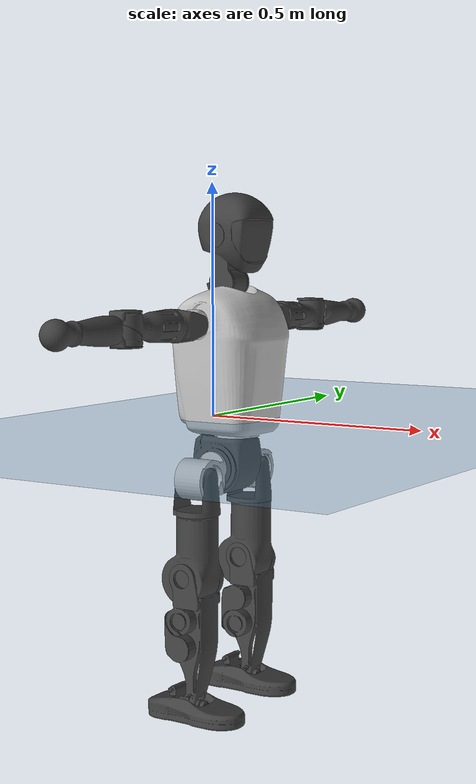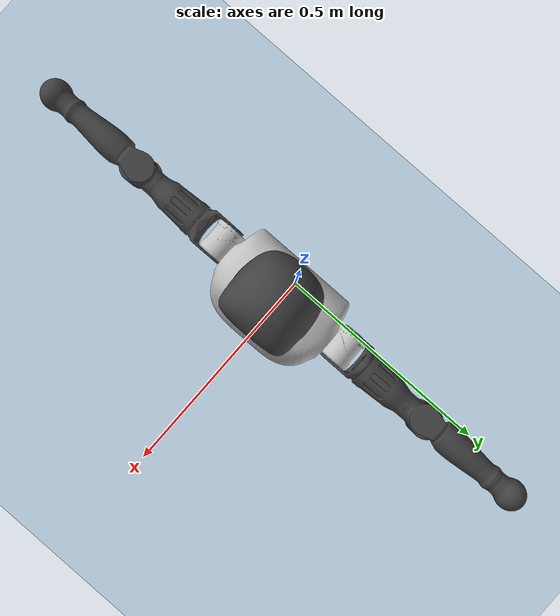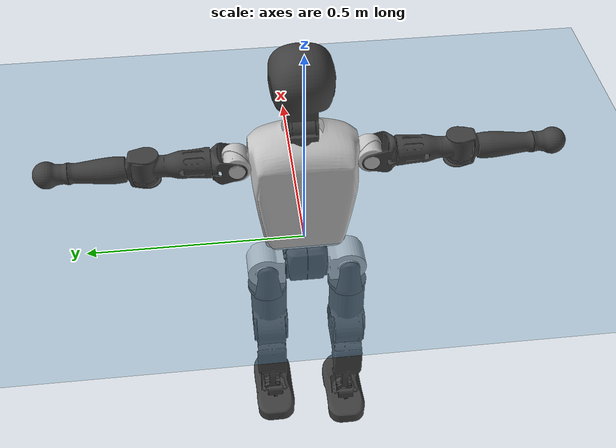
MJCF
<mujoco model="T1">
  <compiler angle="radian" assetdir="assets" balanceinertia="true" inertiafromgeom="false"/>

  <option timestep="0.005" density="1.2" viscosity="2e-05"/>

  <size nkey="1"/>

  <visual>
    <quality shadowsize="8192"/>
    <map shadowclip="0.5"/>
  </visual>

  <default>
    <default class="/">
      <joint armature="0.01" damping="0.01" frictionloss="0.1"/>
      <geom contype="0" conaffinity="0" group="1" solref="-1000 -80"/>
      <site size="0.01 0.005 0.005" group="5"/>
      <general forcelimited="true" biastype="affine" gainprm="25" biasprm="0 -25 -0.6"/>
      <default class="t1">
        <geom rgba="0.25 0.25 0.25 1"/>
        <default class="visual">
          <geom type="mesh" group="2"/>
        </default>
        <default class="collision">
          <geom group="3"/>
        </default>
        <default class="foot">
          <geom size="0.1115 0.05 0.015" type="box" condim="6" group="4" priority="1" solimp="0.015 1 0.015"/>
        </default>
        <default class="reward_collision_sphere">
          <geom group="5" rgba="1 0 0 1"/>
        </default>
      </default>
    </default>
  </default>

  <asset>
    <texture type="skybox" colorspace="auto" name="//unnamed_texture_0" builtin="gradient" rgb1="0.95 0.95 0.95" rgb2="0.95 0.95 0.95" width="100" height="600"/>
    <texture type="2d" colorspace="auto" name="texplane" builtin="checker" rgb1="0.345 0.575 0.748" rgb2="0.345 0.575 0.748" markrgb="1 1 1" width="512" height="512"/>
    <material name="MatPlane" class="/" texture="texplane" texuniform="true" texrepeat="2 2" specular="0.9"/>
    <mesh name="Trunk" class="/" file="Trunk.stl"/>
    <mesh name="H1" class="/" file="H1.stl"/>
    <mesh name="H2" class="/" file="H2.stl"/>
    <mesh name="AL1" class="/" file="AL1.stl"/>
    <mesh name="AL2" class="/" file="AL2.stl"/>
    <mesh name="AL3" class="/" file="AL3.stl"/>
    <mesh name="left_hand_link" class="/" file="left_hand_link.stl"/>
    <mesh name="AR1" class="/" file="AR1.stl"/>
    <mesh name="AR2" class="/" file="AR2.stl"/>
    <mesh name="AR3" class="/" file="AR3.stl"/>
    <mesh name="right_hand_link" class="/" file="right_hand_link.stl"/>
    <mesh name="Waist" class="/" file="Waist.stl"/>
    <mesh name="Hip_Pitch_Left" class="/" file="Hip_Pitch_Left.stl"/>
    <mesh name="Hip_Roll_Left" class="/" file="Hip_Roll_Left.stl"/>
    <mesh name="Hip_Yaw_Left" class="/" file="Hip_Yaw_Left.stl"/>
    <mesh name="Shank_Left" class="/" file="Shank_Left.stl"/>
    <mesh name="Ankle_Cross_Left" class="/" file="Ankle_Cross_Left.stl"/>
    <mesh name="left_foot_link" class="/" file="left_foot_link.stl"/>
    <mesh name="Hip_Pitch_Right" class="/" file="Hip_Pitch_Right.stl"/>
    <mesh name="Hip_Roll_Right" class="/" file="Hip_Roll_Right.stl"/>
    <mesh name="Hip_Yaw_Right" class="/" file="Hip_Yaw_Right.stl"/>
    <mesh name="Shank_Right" class="/" file="Shank_Right.stl"/>
    <mesh name="Ankle_Cross_Right" class="/" file="Ankle_Cross_Right.stl"/>
    <mesh name="right_foot_link" class="/" file="right_foot_link.stl"/>
  </asset>

  <worldbody>
    <geom name="floor" class="/" size="100 100 0.125" type="plane" group="0" material="MatPlane"/>
    <light name="toplight_shadow" class="/" pos="0 0 5" dir="0.0990148 0.0990148 -0.990148" type="directional" ambient="0.04 0.04 0.04" diffuse="0.55 0.55 0.55" specular="0.12 0.12 0.12"/>
    <light name="toplight_fill" class="/" pos="0 0 5" dir="0.0990148 0.0990148 -0.990148" type="directional" castshadow="false" ambient="0.04 0.04 0.04" diffuse="0.3 0.3 0.3" specular="0.08 0.08 0.08"/>
    <body name="trunk" childclass="t1" pos="-0.00214937 -0.00221006 0.00270521" quat="0.999999 0.000476777 0.000751825 0.000492595">
      <inertial pos="0.0373317 0.000377934 0.101002" quat="0.999976 0.00134747 -0.00678073 0.000443958" mass="7.3426" diaginertia="0.0143868 0.0559911 0.0422089"/>
      <joint name="//unnamed_joint_0" type="free" armature="0" damping="0" frictionloss="0"/>
      <geom name="//unnamed_geom_1" class="visual" rgba="0.76 0.76 0.76 1" mesh="Trunk"/>
      <geom name="//unnamed_geom_2" class="collision" size="0.0642254 0.0856338 0.128451" pos="0.041142 0 0.112822" type="box"/>
      <geom name="//unnamed_geom_3" class="reward_collision_sphere" size="0.0984789" pos="0.041142 0 0.094018"/>
      <geom name="//unnamed_geom_4" class="reward_collision_sphere" size="0.0128451" pos="0.041142 0.0801665 0"/>
      <geom name="//unnamed_geom_5" class="reward_collision_sphere" size="0.0128451" pos="0.041142 -0.0801665 0"/>
      <geom name="//unnamed_geom_6" class="reward_collision_sphere" size="0.0128451" pos="0.041142 0.100915 0.169232"/>
      <geom name="//unnamed_geom_7" class="reward_collision_sphere" size="0.0128451" pos="0.041142 -0.100915 0.169232"/>
      <site name="imu" pos="0.0135253 -0.0058816 0.00496482" size="0.00856338"/>
      <camera name="track" pos="0 -1.88627 0" quat="0.707107 0.707107 0 0" mode="trackcom"/>
      <camera name="ego_camera" pos="0.0836553 0 0.394876" quat="-0.5 -0.5 0.5 0.5"/>
      <body name="H1" pos="0.0444116 0.0018876 0.225423" quat="1 2.4091e-05 -0.000140687 3.81371e-05">
        <inertial pos="-0.00349281 0.000549752 0.0566615" quat="0.764245 -0.0147204 0.00441154 0.644743" mass="0.269378" diaginertia="3.50581e-05 0.000166718 0.000106303"/>
        <joint name="AAHead_yaw" pos="0 0 0" axis="-0.0013334 -0.000360553 0.999999" stiffness="0.00195691" range="-1.6168 1.51964" armature="0.00739134" damping="0.00686409" frictionloss="0.0882779"/>
        <geom name="//unnamed_geom_8" class="visual" mesh="H1"/>
        <body name="H2" pos="0.000587428 -0.000117857 0.0607607" quat="1 -0.000240662 -5.03002e-05 -5.07265e-05">
          <inertial pos="0.00497931 0.00182666 0.0927966" quat="0.988639 0.0999326 -0.0709138 -0.0870497" mass="0.389588" diaginertia="0.0002901 0.00143454 0.00125595"/>
          <joint name="Head_pitch" pos="0 0 0" axis="-0.00161854 -0.999998 -0.00126712" range="-1.1989 0.330312" armature="0.00783036" damping="0.0121341" frictionloss="0.0812109"/>
          <geom name="//unnamed_geom_9" class="visual" mesh="H2"/>
          <geom name="//unnamed_geom_10" class="collision" size="0.068507" pos="0.00685699 0 0.10342"/>
          <geom name="//unnamed_geom_11" class="reward_collision_sphere" size="0.0770704" pos="0.013714 0 0.094018"/>
        </body>
      </body>
      <body name="AL1" pos="0.0406373 0.101987 0.204752" quat="1 -0.00015655 0.000309479 -1.40877e-05">
        <inertial pos="-0.00357856 0.0418285 0.000215264" quat="0.500231 0.495671 -0.506595 0.497433" mass="0.335288" diaginertia="0.000208253 0.00100484 0.00022289"/>
        <joint name="Left_Shoulder_Pitch" pos="0 0 0" axis="0.0155604 0.999874 -0.00311317" stiffness="0.00489311" range="-3.29755 1.26692" armature="0.00887344" damping="0.00979764" frictionloss="0.0870041"/>
        <geom name="//unnamed_geom_12" class="visual" rgba="0.76 0.76 0.76 1" mesh="AL1"/>
        <body name="AL2" pos="0.00059267 0.0451685 -0.00252403" quat="1 -0.000101196 -6.7574e-05 -1.74146e-05">
          <inertial pos="0.00128219 0.0328306 0.000341853" quat="0.487966 0.511742 -0.487984 0.511742" mass="0.0979696" diaginertia="5.95678e-05 0.00025497 0.000128424"/>
          <joint name="Left_Shoulder_Roll" pos="0 0 0" axis="-0.999997 -0.00091952 -0.00234049" range="-1.62279 1.79663" armature="0.00876973" damping="0.0113086" frictionloss="0.0891234"/>
          <geom name="//unnamed_geom_13" class="visual" mesh="AL2"/>
          <body name="AL3" pos="0.00294308 0.0565706 0.00313983" quat="0.999999 -0.0011261 0.000710155 0.000405842">
            <inertial pos="-0.00157647 0.0793842 -0.000495873" quat="0.707092 0.707122 -0.000574774 -0.000173039" mass="0.664809" diaginertia="0.00202227 0.00937214 0.000451666"/>
            <joint name="Left_Elbow_Pitch" pos="0 0 0" axis="-0.00458695 -0.999989 0.000150359" range="-2.27711 2.2741" armature="0.00747855" damping="0.0165192" frictionloss="0.085685"/>
            <geom name="//unnamed_geom_14" class="visual" mesh="AL3"/>
            <geom name="//unnamed_geom_15" class="collision" size="0.0256901 0.0642254" pos="0 0.0471568 0" quat="0.707105 0.707108 0 0" type="cylinder"/>
            <geom name="//unnamed_geom_16" class="reward_collision_sphere" size="0.0308282"/>
            <body name="left_hand_link" pos="-0.00207469 0.139704 -0.000302488" quat="1 0.000444473 9.93831e-05 -0.00081121">
              <inertial pos="0.000329523 0.100741 0.00333067" quat="0.699005 0.715091 -0.00509574 -0.00329157" mass="0.19804" diaginertia="0.00124534 0.00600137 0.000150305"/>
              <joint name="Left_Elbow_Yaw" pos="0 0 0" axis="-0.00106168 0.000693011 0.999999" stiffness="0.0100291" range="-2.43611 -0.0395376" armature="0.00897052" damping="0.0102852" frictionloss="0.0849994"/>
              <geom name="//unnamed_geom_17" class="visual" mesh="left_hand_link"/>
              <geom name="//unnamed_geom_18" class="collision" size="0.0256901 0.0749296" pos="0 0.122608 0" quat="0.707105 0.707108 0 0" type="cylinder"/>
              <geom name="//unnamed_geom_19" class="reward_collision_sphere" size="0.0428169"/>
              <geom name="//unnamed_geom_20" class="reward_collision_sphere" size="0.0299718" pos="0 0.103745 0"/>
              <geom name="//unnamed_geom_21" class="reward_collision_sphere" size="0.0299718" pos="0 0.202774 0"/>
            </body>
          </body>
        </body>
      </body>
      <body name="AR1" pos="0.0417429 -0.10085 0.203455" quat="1 0.000107901 0.000252456 -3.92354e-05">
        <inertial pos="-0.00175678 -0.0447686 0.00128371" quat="0.503402 0.497633 -0.503975 0.494931" mass="0.320412" diaginertia="0.000200998 0.000914044 0.000207341"/>
        <joint name="Right_Shoulder_Pitch" pos="0 0 0" axis="-0.00613555 -0.999976 -0.0032044" stiffness="0.00810472" range="-1.17394 3.33213" armature="0.00934553" damping="0.0071146" frictionloss="0.0967238"/>
        <geom name="//unnamed_geom_22" class="visual" rgba="0.76 0.76 0.76 1" mesh="AR1"/>
        <body name="AR2" pos="-0.000804241 -0.0462134 -0.00125354" quat="0.999999 0.00117342 -1.44646e-05 0.000528219">
          <inertial pos="-0.000270133 -0.0359032 -0.00237468" quat="0.519089 0.49214 -0.501269 0.486903" mass="0.101221" diaginertia="6.15573e-05 0.000262484 0.000129654"/>
          <joint name="Right_Shoulder_Roll" pos="0 0 0" axis="-0.999785 -0.017586 -0.0109622" range="-1.7391 1.58874" armature="0.00788611" damping="0.0061441" frictionloss="0.0879157"/>
          <geom name="//unnamed_geom_23" class="visual" mesh="AR2"/>
          <body name="AR3" pos="0.000363372 -0.0594064 0.00157439" quat="0.999999 -0.00055163 0.000659235 -0.000843914">
            <inertial pos="0.000558758 -0.0817015 0.00214185" quat="0.706994 0.707217 0.00140099 -0.00099263" mass="0.617344" diaginertia="0.00184451 0.00917961 0.000429307"/>
            <joint name="Right_Elbow_Pitch" pos="0 0 0" axis="-0.000291334 1 0.000570735" range="-2.27627 2.26824" armature="0.00859582" damping="0.0134096" frictionloss="0.0883294"/>
            <geom name="//unnamed_geom_24" class="visual" mesh="AR3"/>
            <geom name="//unnamed_geom_25" class="collision" size="0.0256901 0.0642254" pos="0 -0.0471568 0" quat="0.707105 0.707108 0 0" type="cylinder"/>
            <geom name="//unnamed_geom_26" class="reward_collision_sphere" size="0.0308282"/>
            <body name="right_hand_link" pos="-0.00334518 -0.139211 -0.000427541" quat="1 -1.50464e-06 -1.98111e-06 -0.000119022">
              <inertial pos="-0.000248197 -0.101824 0.000802685" quat="0.706607 0.707602 0.00248371 -0.000419505" mass="0.20206" diaginertia="0.00125311 0.00615714 0.000155415"/>
              <joint name="Right_Elbow_Yaw" pos="0 0 0" axis="0.00161779 -0.00388235 0.999991" stiffness="0.00316238" range="-0.0274503 2.44288" armature="0.00744732" damping="0.0088087" frictionloss="0.0975737"/>
              <geom name="//unnamed_geom_27" class="visual" mesh="right_hand_link"/>
              <geom name="//unnamed_geom_28" class="collision" size="0.0256901 0.0749296" pos="0 -0.122608 0" quat="0.707105 0.707108 0 0" type="cylinder"/>
              <geom name="//unnamed_geom_29" class="reward_collision_sphere" size="0.0428169"/>
              <geom name="//unnamed_geom_30" class="reward_collision_sphere" size="0.0299718" pos="0 -0.103745 0"/>
              <geom name="//unnamed_geom_31" class="reward_collision_sphere" size="0.0299718" pos="0 -0.202774 0"/>
            </body>
          </body>
        </body>
      </body>
      <body name="Waist" pos="0.0426176 -0.00372205 -0.106308" quat="1 -0.00026484 0.000885445 -6.07773e-05">
        <inertial pos="-0.000250762 0.00221619 0.00413813" quat="0.983502 0.00381681 -0.180663 0.00841113" mass="1.55715" diaginertia="0.000802489 0.0038227 0.00339734"/>
        <joint name="Waist" pos="0 0 0" axis="0.0019906 -0.013596 0.999906" stiffness="0.00911794" range="-1.57326 1.58381" armature="0.00860867" damping="0.013066" frictionloss="0.0872779"/>
        <geom name="//unnamed_geom_32" class="visual" mesh="Waist"/>
        <body name="Hip_Pitch_Left" pos="-0.00127298 0.0969187 0.00101639" quat="1 -0.00045932 0.000353811 -0.000139893">
          <inertial pos="0.0023022 -0.00838413 -0.0168902" quat="0.974649 0.223194 0.0111481 0.0109377" mass="0.655245" diaginertia="0.00027647 0.00116382 0.00093808"/>
          <joint name="Left_Hip_Pitch" pos="0 0 0" axis="0.0104674 0.999944 0.0016097" stiffness="0.0111059" range="-1.75772 1.56688" armature="0.00975703" damping="0.010558" frictionloss="0.0815807"/>
          <geom name="//unnamed_geom_33" class="visual" rgba="0.76 0.76 0.76 1" mesh="Hip_Pitch_Left"/>
          <body name="Hip_Roll_Left" pos="5.61488e-05 -0.0030886 -0.0172069" quat="1 -0.000147224 0.000134154 8.88092e-05">
            <inertial pos="0.00127836 -0.00100729 -0.0530325" quat="0.706803 -0.00602295 -0.00590971 0.70736" mass="0.23189" diaginertia="0.000248652 0.00107636 0.000368792"/>
            <joint name="Left_Hip_Roll" pos="0 0 0" axis="-0.999932 -0.0112033 0.00311129" range="-1.5711 0.255295" armature="0.00878661" damping="0.00872011" frictionloss="0.0969089"/>
            <geom name="//unnamed_geom_34" class="visual" mesh="Hip_Roll_Left"/>
            <geom name="//unnamed_geom_35" class="reward_collision_sphere" size="0.0470986"/>
            <body name="Hip_Yaw_Left" pos="0.00426445 -0.00338627 -0.0740443" quat="0.999999 0.000629852 0.00120333 -0.000369976">
              <inertial pos="-0.00465513 0.000418633 -0.0867719" quat="0.698215 -0.0394407 -0.0373555 0.713824" mass="1.36061" diaginertia="0.00378069 0.0187362 0.00187693"/>
              <joint name="Left_Hip_Yaw" pos="0 0 0" axis="-0.000900512 0.00193564 -0.999998" range="-1.02445 1.01823" armature="0.00829683" damping="0.0133156" frictionloss="0.0877534"/>
              <geom name="//unnamed_geom_36" class="visual" mesh="Hip_Yaw_Left"/>
              <geom name="//unnamed_geom_37" class="collision" size="0.0428169 0.068507" type="cylinder"/>
              <body name="Shank_Left" pos="-0.00572363 -0.00119276 -0.122482" quat="1 6.7431e-05 -0.000202848 -0.000221485">
                <inertial pos="-0.0066873 0.000172188 -0.117548" quat="0.997705 0.0147946 -0.0204545 0.062832" mass="1.09399" diaginertia="0.0054714 0.0255362 0.00132825"/>
                <joint name="Left_Knee_Pitch" pos="0 0 0" axis="-8.19308e-05 0.999967 0.00818244" range="-0.000386964 2.28328" armature="0.00991185" damping="0" frictionloss="0.0899168"/>
                <geom name="//unnamed_geom_38" class="visual" mesh="Shank_Left"/>
                <geom name="//unnamed_geom_39" class="collision" size="0.0428169 0.0642254" pos="0 0 -0.112822" type="cylinder"/>
                <geom name="//unnamed_geom_40" class="reward_collision_sphere" size="0.055662"/>
                <body name="Ankle_Cross_Left" pos="0.00198698 -0.000867971 -0.264154" quat="0.999999 0.000369627 -0.000683254 0.00109586">
                  <inertial pos="-0.00310551 9.72025e-05 -0.00479599" quat="0.441683 0.549596 0.551045 0.446329" mass="0.0456755" diaginertia="4.26411e-06 1.92563e-05 8.60358e-06"/>
                  <joint name="Left_Ankle_Pitch" pos="0 0 0" axis="-0.0009173 0.999998 0.00165107" range="-0.868402 0.35153" armature="0.00895711" damping="0.0192109" frictionloss="0.0815633"/>
                  <geom name="//unnamed_geom_41" class="visual" mesh="Ankle_Cross_Left"/>
                  <body name="left_foot_link" pos="-0.00262692 -0.00310903 -0.00916304" quat="1 -0.000174248 7.10888e-05 0.000216502">
                    <inertial pos="-0.00284346 -0.00252705 -0.00806782" quat="-0.00656044 0.622707 0.00596897 0.782405" mass="0.43269" diaginertia="0.000400946 0.00175816 0.00165795"/>
                    <joint name="Left_Ankle_Roll" pos="0 0 0" axis="-0.999992 0.00291177 0.00275693" range="-0.413951 0.496922" armature="0.00872559" damping="0" frictionloss="0.0828231"/>
                    <geom name="//unnamed_geom_42" class="visual" mesh="left_foot_link"/>
                    <geom name="left_foot" class="foot" size="0.107892 0.0396159 0.0133987" pos="0.00685699 0 -0.0141027"/>
                    <geom name="//unnamed_geom_44" class="reward_collision_sphere" size="0.0445296" pos="0.00685699 0 -0.0141027"/>
                    <geom name="//unnamed_geom_45" class="reward_collision_sphere" size="0.0256901" pos="0.0651414 -0.0216921 -0.0141027"/>
                    <geom name="//unnamed_geom_46" class="reward_collision_sphere" size="0.0256901" pos="-0.047999 -0.0216921 -0.0141027"/>
                    <site name="left_foot" class="foot" pos="0.00685699 0 -0.0141027" size="0.00856338"/>
                  </body>
                </body>
              </body>
            </body>
          </body>
        </body>
        <body name="Hip_Pitch_Right" pos="-0.00297595 -0.1028 0.00091643" quat="1 0.000252543 -0.000341432 -0.000593186">
          <inertial pos="-0.00121192 0.00506703 -0.0183371" quat="0.973596 -0.228059 0.0099484 -0.000841586" mass="0.641588" diaginertia="0.000283979 0.00113276 0.000925312"/>
          <joint name="Right_Hip_Pitch" pos="0 0 0" axis="0.00108612 -0.999999 0.000439172" range="-1.58478 1.7404" armature="0.00764866" damping="0.00112222" frictionloss="0.0951264"/>
          <geom name="//unnamed_geom_47" class="visual" rgba="0.76 0.76 0.76 1" mesh="Hip_Pitch_Right"/>
          <body name="Hip_Roll_Right" pos="-0.00317553 -0.00175283 -0.0181045" quat="0.999999 0.000324271 0.00116864 -0.00088968">
            <inertial pos="-0.00179697 0.00139677 -0.0475979" quat="0.702715 -0.00178311 0.00244444 0.711465" mass="0.250194" diaginertia="0.000270526 0.00112017 0.000384349"/>
            <joint name="Right_Hip_Roll" pos="0 0 0" axis="-1 0.00026871 -0.000464694" stiffness="0.00493154" range="-0.194325 1.55792" armature="0.00881163" damping="0.0134635" frictionloss="0.097612"/>
            <geom name="//unnamed_geom_48" class="visual" mesh="Hip_Roll_Right"/>
            <geom name="//unnamed_geom_49" class="reward_collision_sphere" size="0.0470986"/>
            <body name="Hip_Yaw_Right" pos="-0.000223613 -0.00128893 -0.0814159" quat="1 0.000230496 -5.70845e-05 2.62627e-07">
              <inertial pos="-0.00409864 -0.00119663 -0.0811937" quat="0.71263 -0.0308551 -0.0343405 0.700019" mass="1.39622" diaginertia="0.00400926 0.0188996 0.00194935"/>
              <joint name="Right_Hip_Yaw" pos="0 0 0" axis="-0.00588675 -0.00344058 -0.999977" range="-0.999616 1.00123" armature="0.00841" damping="0.01224" frictionloss="0.0780055"/>
              <geom name="//unnamed_geom_50" class="visual" mesh="Hip_Yaw_Right"/>
              <geom name="//unnamed_geom_51" class="collision" size="0.0428169 0.068507" type="cylinder"/>
              <body name="Shank_Right" pos="-0.011076 -0.00225853 -0.128297" quat="1 -0.000185408 0.000756009 -0.000514054">
                <inertial pos="-0.00414221 -0.00256816 -0.115941" quat="0.998758 -0.00873219 -0.031422 -0.0376787" mass="1.16714" diaginertia="0.0052544 0.0263721 0.00142318"/>
                <joint name="Right_Knee_Pitch" pos="0 0 0" axis="-0.00232566 -0.999988 -0.00419834" range="-2.37706 -0.00750603" armature="0.00818758" damping="0.00735512" frictionloss="0.0879988"/>
                <geom name="//unnamed_geom_52" class="visual" mesh="Shank_Right"/>
                <geom name="//unnamed_geom_53" class="collision" size="0.0428169 0.0642254" pos="0 0 -0.112822" type="cylinder"/>
                <geom name="//unnamed_geom_54" class="reward_collision_sphere" size="0.055662"/>
                <body name="Ankle_Cross_Right" pos="-0.000995534 0.000191214 -0.267189" quat="1 -7.73237e-05 -4.13206e-05 -1.49515e-05">
                  <inertial pos="-0.00122651 0.00313279 -0.00748978" quat="0.442928 0.550866 0.550823 0.443797" mass="0.0437408" diaginertia="4.4522e-06 1.82692e-05 8.43869e-06"/>
                  <joint name="Right_Ankle_Pitch" pos="0 0 0" axis="-0.00579758 -0.999949 0.00822162" range="-0.29358 0.815758" armature="0.00851134" damping="0.0207482" frictionloss="0.0878731"/>
                  <geom name="//unnamed_geom_55" class="visual" mesh="Ankle_Cross_Right"/>
                  <body name="right_foot_link" pos="0.00248595 0.00143869 -0.0162373" quat="1 2.11961e-05 8.20425e-05 -0.000115157">
                    <inertial pos="-0.00010692 0.00223427 -0.00946495" quat="-0.00869537 0.620588 -0.00714055 0.784056" mass="0.413927" diaginertia="0.000401967 0.00177951 0.00157073"/>
                    <joint name="Right_Ankle_Roll" pos="0 0 0" axis="-0.999975 0.000292604 -0.00707881" range="-0.489083 0.471102" armature="0.00847108" damping="0.00726836" frictionloss="0.0974734"/>
                    <geom name="//unnamed_geom_56" class="visual" mesh="right_foot_link"/>
                    <geom name="right_foot" class="foot" size="0.0991851 0.0387784 0.0138081" pos="0.00685699 0 -0.0141027"/>
                    <geom name="//unnamed_geom_58" class="reward_collision_sphere" size="0.0342535"/>
                    <geom name="//unnamed_geom_59" class="reward_collision_sphere" size="0.0256901" pos="0.00685699 0 -0.0141027"/>
                    <geom name="//unnamed_geom_60" class="reward_collision_sphere" size="0.0256901" pos="0.0651414 0.0216921 -0.0141027"/>
                    <geom name="//unnamed_geom_61" class="reward_collision_sphere" size="0.0256901" pos="-0.047999 0.0216921 -0.0141027"/>
                    <site name="right_foot" class="foot" pos="0.00685699 0 -0.0141027" size="0.00856338"/>
                  </body>
                </body>
              </body>
            </body>
          </body>
        </body>
      </body>
    </body>
  </worldbody>

  <contact>
    <pair class="/" geom1="floor" geom2="left_foot" name="//unnamed_contact_0"/>
    <pair class="/" geom1="floor" geom2="right_foot" name="//unnamed_contact_1"/>
  </contact>

  <actuator>
    <general name="AAHead_yaw" class="/" joint="AAHead_yaw" forcerange="-5.88519 5.88519" gainprm="19.9951" biasprm="0 -19.9951 -0.540512"/>
    <general name="Head_pitch" class="/" joint="Head_pitch" forcerange="-5.86686 5.86686" gainprm="19.9951" biasprm="0 -19.9951 -0.540512"/>
    <general name="Left_Shoulder_Pitch" class="/" joint="Left_Shoulder_Pitch" forcerange="-14.9907 14.9907" gainprm="19.9951" biasprm="0 -19.9951 -0.540512"/>
    <general name="Left_Shoulder_Roll" class="/" joint="Left_Shoulder_Roll" forcerange="-14.1719 14.1719" gainprm="19.9951" biasprm="0 -19.9951 -0.540512"/>
    <general name="Left_Elbow_Pitch" class="/" joint="Left_Elbow_Pitch" forcerange="-17.1077 17.1077" gainprm="19.9951" biasprm="0 -19.9951 -0.540512"/>
    <general name="Left_Elbow_Yaw" class="/" joint="Left_Elbow_Yaw" forcerange="-15.4316 15.4316" gainprm="19.9951" biasprm="0 -19.9951 -0.540512"/>
    <general name="Right_Shoulder_Pitch" class="/" joint="Right_Shoulder_Pitch" forcerange="-15.3971 15.3971" gainprm="19.9951" biasprm="0 -19.9951 -0.540512"/>
    <general name="Right_Shoulder_Roll" class="/" joint="Right_Shoulder_Roll" forcerange="-17.0065 17.0065" gainprm="19.9951" biasprm="0 -19.9951 -0.540512"/>
    <general name="Right_Elbow_Pitch" class="/" joint="Right_Elbow_Pitch" forcerange="-15.4879 15.4879" gainprm="19.9951" biasprm="0 -19.9951 -0.540512"/>
    <general name="Right_Elbow_Yaw" class="/" joint="Right_Elbow_Yaw" forcerange="-14.7027 14.7027" gainprm="19.9951" biasprm="0 -19.9951 -0.540512"/>
    <general name="Waist" class="/" joint="Waist" forcerange="-23.4572 23.4572" gainprm="19.9951" biasprm="0 -19.9951 -0.540512"/>
    <general name="Left_Hip_Pitch" class="/" joint="Left_Hip_Pitch" forcerange="-37.3162 37.3162" gainprm="19.9951" biasprm="0 -19.9951 -0.540512"/>
    <general name="Left_Hip_Roll" class="/" joint="Left_Hip_Roll" forcerange="-27.6812 27.6812" gainprm="19.9951" biasprm="0 -19.9951 -0.540512"/>
    <general name="Left_Hip_Yaw" class="/" joint="Left_Hip_Yaw" forcerange="-23.0168 23.0168" gainprm="19.9951" biasprm="0 -19.9951 -0.540512"/>
    <general name="Left_Knee_Pitch" class="/" joint="Left_Knee_Pitch" forcerange="-51.2155 51.2155" gainprm="19.9951" biasprm="0 -19.9951 -0.540512"/>
    <general name="Left_Ankle_Pitch" class="/" joint="Left_Ankle_Pitch" forcerange="-17.2415 17.2415" gainprm="19.9951" biasprm="0 -19.9951 -0.540512"/>
    <general name="Left_Ankle_Roll" class="/" joint="Left_Ankle_Roll" forcerange="-13.6379 13.6379" gainprm="19.9951" biasprm="0 -19.9951 -0.540512"/>
    <general name="Right_Hip_Pitch" class="/" joint="Right_Hip_Pitch" forcerange="-41.4626 41.4626" gainprm="19.9951" biasprm="0 -19.9951 -0.540512"/>
    <general name="Right_Hip_Roll" class="/" joint="Right_Hip_Roll" forcerange="-26.5323 26.5323" gainprm="19.9951" biasprm="0 -19.9951 -0.540512"/>
    <general name="Right_Hip_Yaw" class="/" joint="Right_Hip_Yaw" forcerange="-25.3396 25.3396" gainprm="19.9951" biasprm="0 -19.9951 -0.540512"/>
    <general name="Right_Knee_Pitch" class="/" joint="Right_Knee_Pitch" forcerange="-56.4428 56.4428" gainprm="19.9951" biasprm="0 -19.9951 -0.540512"/>
    <general name="Right_Ankle_Pitch" class="/" joint="Right_Ankle_Pitch" forcerange="-16.4579 16.4579" gainprm="19.9951" biasprm="0 -19.9951 -0.540512"/>
    <general name="Right_Ankle_Roll" class="/" joint="Right_Ankle_Roll" forcerange="-14.0596 14.0596" gainprm="19.9951" biasprm="0 -19.9951 -0.540512"/>
  </actuator>

  <sensor>
    <gyro site="imu" name="imu_angular_velocity"/>
    <velocimeter site="imu" name="imu_linear_velocity"/>
    <framelinvel objtype="site" objname="left_foot" name="left_foot_global_linear_velocity"/>
    <framelinvel objtype="site" objname="right_foot" name="right_foot_global_linear_velocity"/>
  </sensor>

  <keyframe>
    <key name="home" qpos="0 0 0.6385 1 0 0 0 0 0 0 1.4 0 -0.4 0 -1.4 0 0.4 0 -0.4 0 0 0.8 -0.4 0 0.4 0 0 -0.8 0.4 0"/>
  </keyframe>
</mujoco>
